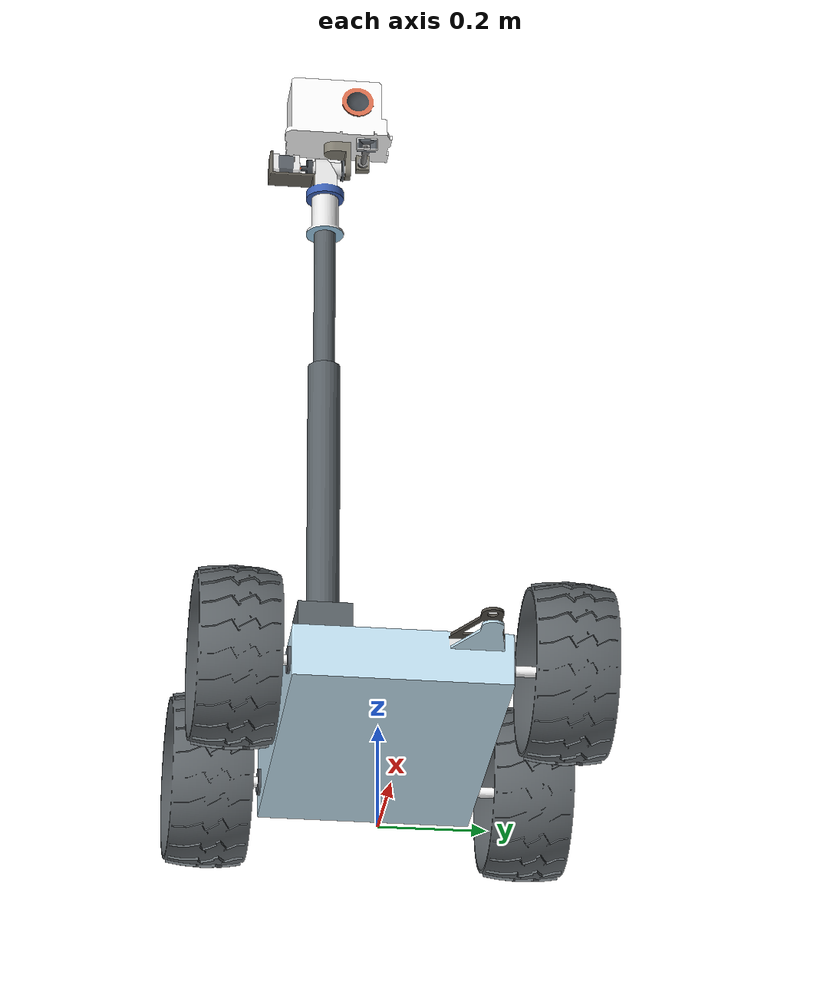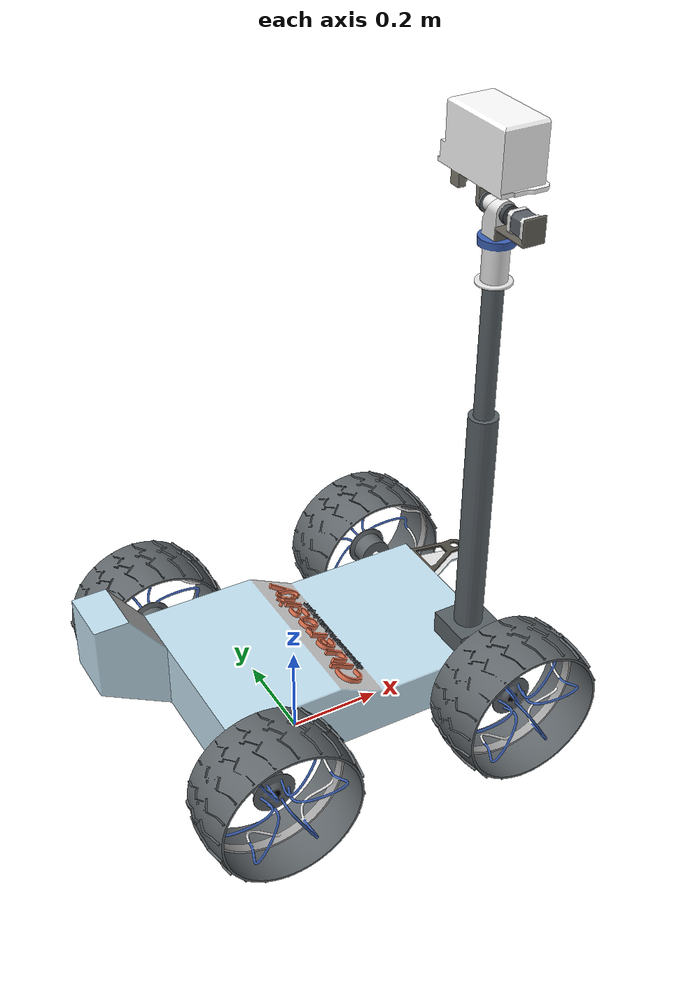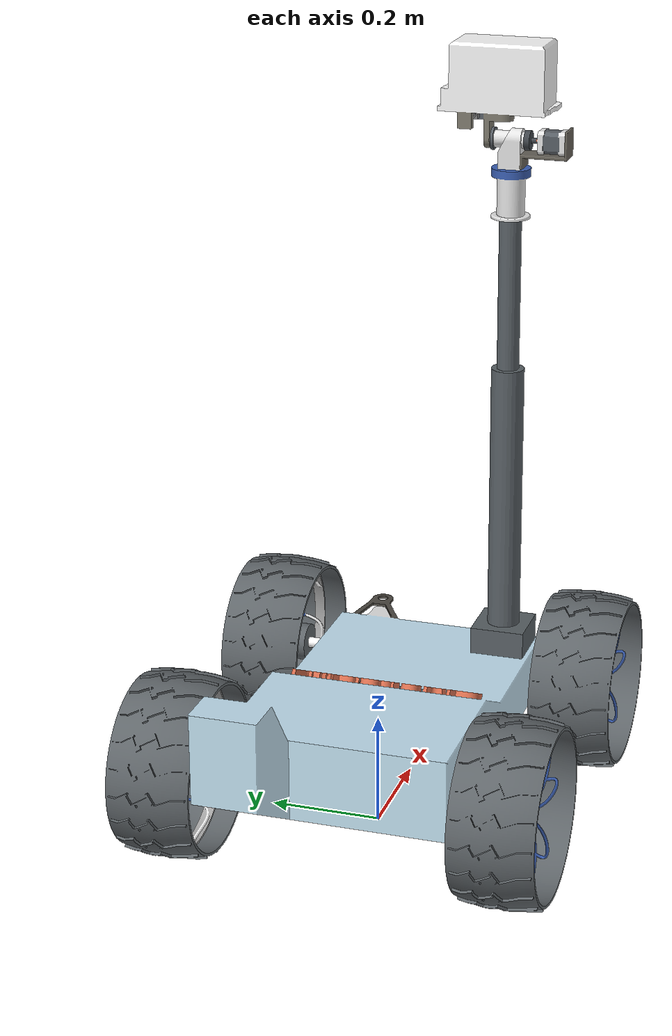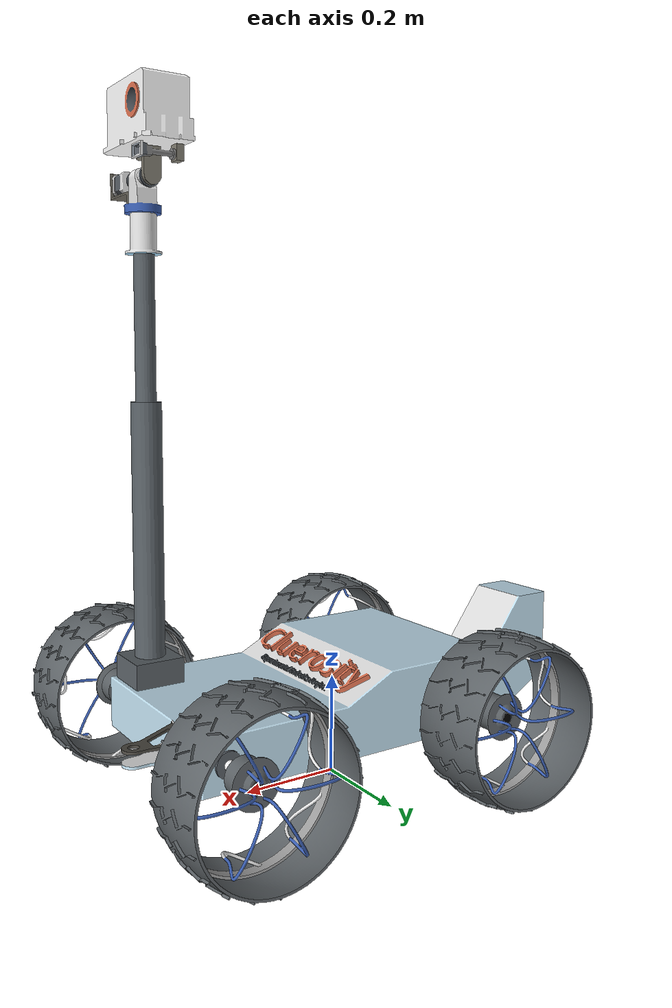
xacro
<?xml version="1.0"?>
<robot name="cluerosity" xmlns:xacro="http://www.ros.org/wiki/xacro">

    <!-- Includes -->
    <xacro:include filename="$(find cluerosity_description)/urdf/meshes.xacro" />
    <xacro:include filename="$(find cluerosity_description)/urdf/materials.xacro" />
    <xacro:include filename="$(find cluerosity_description)/urdf/visual.xacro" />
    <xacro:include filename="$(find cluerosity_description)/urdf/physics.xacro" />
    <xacro:include filename="$(find cluerosity_description)/urdf/wheels.xacro" />
    <xacro:include filename="$(find cluerosity_description)/urdf/cluerosity_links.xacro" />
    <xacro:include filename="$(find cluerosity_description)/urdf/cluerosity.gazebo" />
    <xacro:include filename="$(find cluerosity_description)/urdf/gimbal_transmission.xacro" />

    <!-- Properties -->
    <xacro:property name="PI" value="3.14159265359" />

    <!--
        +=====================+
        |      Base Link      |
        +=====================+
    -->
    <xacro:base_link mesh_name="${robot_base}"/>

    <!--
        +=====================+
        |     Wheel Shaft     |
        +=====================+
    -->
    <xacro:cluerosity_shaft
        name="front_shaft"
        joint_xyz="0.350 0 0.05" />

    <xacro:cluerosity_shaft
        name="rear_shaft"
        joint_xyz="-0.20 0 0.05" />

    <!--
        +=====================+
        |   Wheel definition  |
        +=====================+
    -->

    <!-- Right Front Wheel -->
    <xacro:cluerosity_wheel
        name="right_front_wheel"
        tyre_xyz="-0.14686986 0 0" tyre_rpy="${PI/2} 0 ${-PI/2}"
        rim_xyz="0 0 0" rim_rpy="0 0 0"
        joint_xyz="0.35 -0.30 0.05" joint_rpy="0 0 0" />

    <!-- Right Rear Wheel -->
    <xacro:cluerosity_wheel
        name="right_rear_wheel"
        tyre_xyz="-0.14686986 0 0" tyre_rpy="${PI/2} 0 ${-PI/2}"
        rim_xyz="0 0 0" rim_rpy="0 0 0"
        joint_xyz="-0.20 -0.30 0.05" joint_rpy="0 0 0" />

    <!-- Left Front Wheel -->
    <xacro:cluerosity_wheel
        name="left_front_wheel"
        tyre_xyz="-0.14686986 0 0" tyre_rpy="${PI/2} 0 ${-PI/2}"
        rim_xyz="0 0 0" rim_rpy="0 0 ${PI}"
        joint_xyz="0.35 0.30 0.05" joint_rpy="0 0 0" />

    <!-- Left Rear Wheel -->
    <xacro:cluerosity_wheel
        name="left_rear_wheel"
        tyre_xyz="-0.14686986 0 0" tyre_rpy="${PI/2} 0 ${-PI/2}"
        rim_xyz="0 0 0" rim_rpy="0 0 ${PI}"
        joint_xyz="-0.20 0.30 0.05" joint_rpy="0 0 0" />

    <!--
        +=====================+
        |   Sensor Gimbal     |
        +=====================+
    -->

    <!-- Gimbal Base  -->
    <xacro:gimbal_base />

    <xacro:gimbal_base_b />

    <xacro:gimbal_base_c />

    <!-- Gimbal Axle  -->
    <xacro:gimbal_axle mesh_name="${gimbal_axle}"/>

    <!-- Gimbal Sensor Housing  -->
    <xacro:sensor_housing mesh_name="${sensor_housing}" />

     <!-- Testing the Sensor height adjuster -->

    <!-- Stepper Motor -->
    <xacro:fixed_link
        name="stepper_motor"
        link_xyz="0 0 0" link_rpy="0 ${PI/2} 0"
        mesh_name="${stepper_motor}"
        joint_xyz="-0.10 0 0.19" joint_rpy="0 0 0"
        parent="gimbal_axle"
        collision_xyz="0.0325 0 0" collision_rpy="0 ${PI/2} 0" collision_size="0.05 0.05 0.080"
        mass="0.20879833"
        ixx="0.0000978" ixy="0" ixz="0"
        iyy="0.0000978" iyz="0" izz="0.0000491"/>

    <!-- Camera Sensor -->
    <xacro:sensor_link
        name="camera_link"
        joint_xyz="0.035 -0.05 0.125" joint_rpy="0 0 ${-PI/2}"
        parent="sensor_housing" />

     <xacro:sensor_link
        name="rear_camera_link"
        joint_xyz="-0.325 0.140 0.25" joint_rpy="0 0 ${PI-0.5}"
        parent="base_link" />

    <!-- RGB-D Camera  -->
    <xacro:sensor_link
        name="camera_depth_link"
        joint_xyz="0.05 0 0" joint_rpy="${-PI/2} 0 ${-PI/2}"
        parent="camera_link"/>

    <!-- Hokuyo Laser Scanner -->
    <xacro:sensor_link
        name="hokuyo_link"
        joint_xyz="0.05 -0.05 0.035" joint_rpy="0 0 ${-PI/2}"
        parent="sensor_housing" />

    <!--
        +=======================+
        | Velodyne LiDAR Sensor |
        +=======================+
    -->

    <!-- LiDAR Base -->
    <!-- LiDAR Sensor -->
</robot>

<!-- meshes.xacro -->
<robot xmlns:xacro="http://www.ros.org/wiki/xacro">
    <xacro:property name="robot_base" value="package://cluerosity_description/meshes/robot_base.dae" />
    <xacro:property name="tyre" value="package://cluerosity_description/meshes/tyre.dae" />
    <xacro:property name="rim" value="package://cluerosity_description/meshes/rim.dae" />
    <xacro:property name="gimbal_axle" value="package://cluerosity_description/meshes/gimbal_axle.dae" />
    <xacro:property name="stepper_motor" value="package://cluerosity_description/meshes/stepper_motor.dae" />
    <xacro:property name="sensor_housing" value="package://cluerosity_description/meshes/sensor_housing.dae" />
    <xacro:property name="lidar_base" value="package://cluerosity_description/meshes/lidar_base.dae" />
    <xacro:property name="lidar_sensor" value="package://cluerosity_description/meshes/velodyne_lidar.dae" />
    <xacro:property name="motor" value="package://cluerosity_description/meshes/motor.dae" />
    <xacro:property name="motor_connector_01" value="package://cluerosity_description/meshes/motor_connector_01.dae" />
    <xacro:property name="motor_connector_02" value="package://cluerosity_description/meshes/motor_connector_02.dae" />
    <xacro:property name="link_01" value="package://cluerosity_description/meshes/link_01.dae" />
    <xacro:property name="link_02" value="package://cluerosity_description/meshes/link_02.dae" />
    <xacro:property name="end_effector_connector" value="package://cluerosity_description/meshes/end_effector_connector.dae" />

</robot>

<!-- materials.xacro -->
<robot name="m2wr" xmlns:xacro="https://www.ros.org/wiki/xacro">

    <material name="black">
        <color rgba="0.0 0.0 0.0 1.0" />
    </material>
    <material name="blue">
        <color rgba="0.203125 0.23828125 0.28515625 1.0" />
    </material>
    <material name="green">
        <color rgba="0.0 0.8 0.0 1.0" />
    </material>
    <material name="grey">
        <color rgba="0.2 0.2 0.2 1.0" />
    </material>
    <material name="orange">
        <color rgba="1.0 0.423529411765 0.0392156862745 1.0" />
    </material>
    <material name="brown">
        <color rgba="0.870588235294 0.811764705882 0.764705882353 1.0" />
    </material>
    <material name="red">
        <color rgba="0.80078125 0.12890625 0.1328125 1.0" />
    </material>
    <material name="white">
        <color rgba="1.0 1.0 1.0 1.0" />
    </material>
    <material name="dark_gray">
        <color rgba="0.35 0.38 0.4 1" />
    </material>
    <material name="cyan">
        <color rgba="0 1.0 1.0 1.0" />
    </material>

</robot>

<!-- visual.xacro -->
<robot xmlns:xacro="http://ros.org/wiki/xacro">

    <!-- For Links with Meshes -->
    <xacro:macro name="mesh_link" params="xyz rpy mesh_name">
        <visual>
            <origin xyz="${xyz}" rpy="${rpy}" />
            <geometry>
                <mesh filename="${mesh_name}" />
            </geometry>
        </visual>
    </xacro:macro>

    <!-- For Cylindrical Links  -->
    <xacro:macro name="cylinder_link" params="xyz rpy length radius material_name">
        <visual>
            <origin xyz="${xyz}" rpy="${rpy}" />
            <geometry>
                <cylinder length="${length}" radius="${radius}" />
            </geometry>
            <material name="${material_name}" />
        </visual>
    </xacro:macro>

    <!-- For box links -->
    <xacro:macro name="box_link" params="xyz rpy box_size material_name">
        <visual>
            <origin xyz="${xyz}" rpy="${rpy}" />
            <geometry>
                <box size="${box_size}" />
            </geometry>
            <material name="${material_name}" />
        </visual>
    </xacro:macro>

</robot>

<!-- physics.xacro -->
<robot xmlns:xacro="http://ros.org/wiki/xacro">

    <!-- Box Collsion -->
    <xacro:macro name="box_collision" params="xyz rpy box_size">
        <collision>
            <origin xyz="${xyz}" rpy="${rpy}" />
            <geometry>
                <box size="${box_size}" />
            </geometry>
        </collision>
    </xacro:macro>

    <!-- Cylindrical Collision  -->
    <xacro:macro name="cylinder_collision" params="xyz rpy length radius">
        <collision>
            <origin xyz="${xyz}" rpy="${rpy}" />
            <geometry>
                <cylinder length="${length}" radius="${radius}" />
            </geometry>
        </collision>
    </xacro:macro>

    <!-- Mass Properties: Inertial definition -->
    <xacro:macro name="link_inertia" params="xyz rpy mass ixx ixy ixz iyy iyz izz">
        <inertial>
            <mass value="${mass}" />
            <origin xyz="${xyz}" rpy="${rpy}" />
            <inertia ixx="${ixx}" ixy="${ixy}" ixz="${ixz}" iyy="${iyy}" iyz="${iyz}" izz="${izz}" />
        </inertial>
    </xacro:macro>

</robot>

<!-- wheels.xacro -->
<robot xmlns:xacro="http://ros.org/wiki/xacro">

    <!--
        +==================================+
        |      Wheel Definition Macro      |
        +=================================+
    -->

    <xacro:macro name="cluerosity_wheel" params="name tyre_xyz tyre_rpy rim_xyz rim_rpy joint_xyz joint_rpy">
        <link name="${name}">
            <xacro:mesh_link
                xyz="${tyre_xyz}" rpy="${tyre_rpy}"
                mesh_name="${tyre}"/>
            <xacro:mesh_link
                xyz="${rim_xyz}" rpy="${rim_rpy}"
                mesh_name="${rim}"/>
            <xacro:cylinder_collision
                xyz="0 0 0" rpy="${PI/2} 0 0"
                length="0.15" radius="0.165" />
            <xacro:link_inertia
                xyz="0 0 0" rpy="${PI/2} 0 0"
                mass="5.52250093"
                ixx="0.13326254" ixy="0" ixz="0"
                iyy="0.07660474" iyz="0"  izz="0.077"/>
        </link>

        <joint name="${name}_joint" type="continuous">
            <parent link="base_link" />
            <child link="${name}" />
            <origin xyz="${joint_xyz}" rpy="${joint_rpy}" />
            <axis xyz="0 1 0" rpy="0 0 0" />
        </joint>
    </xacro:macro>

    <!--
        +=============================+
        |      Wheel Shaft Macro      |
        +============================+
    -->

    <xacro:macro name="cluerosity_shaft" params="name joint_xyz">
        <link name="${name}">
            <xacro:cylinder_link
                xyz="0 0 0" rpy="${PI/2} 0 0"
                radius="0.010" length="0.550"
                material_name="white"/>
            <xacro:cylinder_collision
                xyz="0 0 0" rpy="${PI/2} 0 0"
                radius="0.010" length="0.550"/>
            <xacro:link_inertia
                xyz="0 0 0" rpy="${PI/2} 0 0"
                mass="0.30129837"
                ixx="0.00759711" ixy="0" ixz="0"
                iyy="0.00759711" iyz="0"  izz="0.00000377"/>
        </link>

        <joint name="${name}_joint" type="fixed">
            <parent link="base_link" />
            <child link="${name}" />
            <origin xyz="${joint_xyz}" rpy="0 0 0" />
        </joint>
    </xacro:macro>

</robot>

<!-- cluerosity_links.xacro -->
<robot xmlns:xacro="http://ros.org/wiki/xacro">

    <!--
        +===========================+
        |      Fixed Link Macro     |
        +==========================+
    -->

    <xacro:macro name="fixed_link"
        params="name link_xyz link_rpy joint_xyz joint_rpy mesh_name collision_xyz collision_rpy collision_size mass ixx ixy ixz iyy iyz izz parent">
        <link name="${name}">
            <xacro:mesh_link
                xyz="${link_xyz}" rpy="${link_rpy}"
                mesh_name="${mesh_name}" />
            <xacro:box_collision
                xyz="${collision_xyz}" rpy="${collision_rpy}"
                box_size="${collision_size}" />
            <xacro:link_inertia
                xyz="${collision_xyz}" rpy="${collision_rpy}"
                mass="${mass}"
                ixx="${ixx}" ixy="${ixy}" ixz="${ixz}"
                iyy="${iyy}" iyz="${iyz}" izz="${izz}" />
        </link>

        <joint name="${name}_joint" type="fixed">
            <parent link="${parent}" />
            <child link="${name}" />
            <origin xyz="${joint_xyz}" rpy="${joint_rpy}" />
        </joint>
    </xacro:macro>

    <!--
        +===========================+
        |   Continuous Link Macro    |
        +==========================+
    -->

    <xacro:macro name="continuous_link"
        params="name link_xyz link_rpy joint_xyz joint_rpy mesh_name collision_xyz collision_rpy collision_size mass ixx ixy ixz iyy iyz izz parent axis_xyz axis_rpy">
        <link name="${name}">
            <xacro:mesh_link
                xyz="${link_xyz}" rpy="${link_rpy}"
                mesh_name="${mesh_name}" />
            <xacro:box_collision
                xyz="${collision_xyz}" rpy="${collision_rpy}"
                box_size="${collision_size}" />
            <xacro:link_inertia
                xyz="${collision_xyz}" rpy="${collision_rpy}"
                mass="${mass}"
                ixx="${ixx}" ixy="${ixy}" ixz="${ixz}"
                iyy="${iyy}" iyz="${iyz}" izz="${izz}" />
        </link>

        <joint name="${name}_joint" type="continuous">
            <parent link="${parent}" />
            <child link="${name}" />
            <origin xyz="${joint_xyz}" rpy="${joint_rpy}" />
            <axis xyz="${axis_xyz}" rpy="${axis_rpy}" />
        </joint>
    </xacro:macro>

    <!--
        +===========================+
        |  Revolute Link Macro    |
        +==========================+
    -->

    <xacro:macro name="revolute_link"
        params="name link_xyz link_rpy joint_xyz joint_rpy mesh_name collision_xyz collision_rpy collision_size mass ixx ixy ixz iyy iyz izz parent axis_xyz axis_rpy lower upper">
        <link name="${name}">
            <xacro:mesh_link
                xyz="${link_xyz}" rpy="${link_rpy}"
                mesh_name="${mesh_name}" />
            <xacro:box_collision
                xyz="${collision_xyz}" rpy="${collision_rpy}"
                box_size="${collision_size}" />
            <xacro:link_inertia
                xyz="${collision_xyz}" rpy="${collision_rpy}"
                mass="${mass}"
                ixx="${ixx}" ixy="${ixy}" ixz="${ixz}"
                iyy="${iyy}" iyz="${iyz}" izz="${izz}" />
        </link>

        <joint name="${name}_joint" type="revolute">
            <parent link="${parent}" />
            <child link="${name}" />
            <origin xyz="${joint_xyz}" rpy="${joint_rpy}" />
            <axis xyz="${axis_xyz}" rpy="${axis_rpy}" />
            <limit effort="1000.0" lower="${lower}" upper="${upper}" velocity="0.5" />
        </joint>
    </xacro:macro>

    <!--
        +===========================+
        |  Prismatic Link Macro    |
        +==========================+
    -->

    <xacro:macro name="prismatic_link"
        params="name link_xyz link_rpy joint_xyz joint_rpy length radius mass ixx ixy ixz iyy iyz izz parent lower upper">
        <link name="${name}">
            <xacro:cylinder_link
                xyz="${link_xyz}" rpy="${link_rpy}"
                length="${length}"
                radius="${radius}"
                material_name="dark_gray" />

            <xacro:cylinder_collision
                xyz="${link_xyz}" rpy="${link_rpy}"
                length="${length}"
                radius="${radius}" />
            <xacro:link_inertia
                xyz="${link_xyz}" rpy="${link_rpy}"
                mass="${mass}"
                ixx="${ixx}" ixy="${ixy}" ixz="${ixz}"
                iyy="${iyy}" iyz="${iyz}" izz="${izz}" />
        </link>

        <joint name="${name}_joint" type="prismatic">
            <parent link="${parent}" />
            <child link="${name}" />
            <origin xyz="${joint_xyz}"
                rpy="${joint_rpy}" />
            <limit
                effort="1000.0" lower="${lower}" upper="${upper}" velocity="0.5" />
        </joint>
    </xacro:macro>

    <!--
        +==============================================+
        |      Base Link and Base footprint Macro      |
        +==============================================+
    -->

    <xacro:macro name="base_link" params="mesh_name">
        <link name="base_link">
            <xacro:mesh_link
                xyz="0 0 0.15" rpy="0 ${PI} ${-PI/2}"
                mesh_name="${mesh_name}" />
            <xacro:box_collision
                xyz="0 0 0.075" rpy="0 0 0"
                box_size="0.8 0.4 0.15" />
            <xacro:box_collision
                xyz="-0.325 0.14 0.2" rpy="0 0 0"
                box_size="0.15 0.12 0.1" />
            <xacro:box_collision
                xyz="0.45 0.1 0.05" rpy="0 0 0"
                box_size="0.1 0.1 0.05" />
            <xacro:link_inertia
                xyz="0 0 0.075" rpy="0 0 0"
                mass="56.77662104"
                ixx="2.64" ixy="0.221" ixz="0.046"
                iyy="0.907" iyz="-0.237" izz="3.303" />
        </link>

        <!-- Base footprint is on the ground under the robot -->
        <link name="base_footprint" />

        <joint name="base_link_joint" type="fixed">
            <origin xyz="0 0 0.115" rpy="0 0 0" />
            <parent link="base_footprint" />
            <child link="base_link" />
        </joint>
    </xacro:macro>

    <!--
        +==================================+
        |   Sensor Gimbal links Macro     |
        +================================+
    -->

    <!-- Gimbal Base  -->
    <xacro:macro name="gimbal_base">
        <link name="gimbal_base">
            <xacro:box_link
                xyz="0 0 0.025" rpy="0 0 0"
                box_size="0.1 0.1 0.05"
                material_name="dark_gray" />
            <xacro:box_collision
                xyz="0 0 0.025" rpy="0 0 0"
                box_size="0.1 0.1 0.05" />
            <xacro:link_inertia
                xyz="0 0 0.025" rpy="0 0 0"
                mass="3.4875"
                ixx="0.004" ixy="0" ixz="0"
                iyy="0.004" iyz="0" izz="0.006" />
        </link>

        <joint name="gimbal_base_joint" type="fixed">
            <parent link="base_link" />
            <child link="gimbal_base" />
            <origin xyz="0.340 -0.140 0.1" rpy="0 0 ${PI/2}" />
        </joint>
    </xacro:macro>

    <xacro:macro name="gimbal_base_b">
        <link name="gimbal_base_b">
            <xacro:cylinder_link
                xyz="-0.1 0 0" rpy="0 ${PI/2} 0"
                length="0.5" radius="0.03"
                material_name="dark_gray" />
            <xacro:link_inertia
                xyz="0 0 0.025" rpy="0 0 0"
                mass="3.5"
                ixx="0.004" ixy="0" ixz="0"
                iyy="0.004" iyz="0" izz="0.006" />
        </link>

        <joint name="gimbal_base_b_joint" type="fixed">
            <parent link="gimbal_base" />
            <child link="gimbal_base_b" />
            <origin xyz="0 0 0.2" rpy="0 ${PI/2} 0" />
        </joint>
    </xacro:macro>

    <xacro:macro name="gimbal_base_c">
        <link name="gimbal_base_c">
            <xacro:cylinder_link
                xyz="0 0 0" rpy="0 ${PI/2} 0"
                length="0.8" radius="0.02"
                material_name="dark_gray" />
            <xacro:link_inertia
                xyz="0 0 0" rpy="0 ${PI/2} 0"
                mass="2.5"
                ixx="0.004" ixy="0" ixz="0"
                iyy="0.004" iyz="0" izz="0.006" />
        </link>

        <joint name="gimbal_base_c_joint" type="fixed">
            <parent link="gimbal_base_b" />
            <child link="gimbal_base_c" />
            <origin xyz="-0.28 0 0" rpy="0 0 0" />
        </joint>
    </xacro:macro>

    <!-- Gimbal Axle -->
    <xacro:macro name="gimbal_axle" params="mesh_name">
        <link name="gimbal_axle">
            <xacro:mesh_link
                xyz="0 0 0" rpy="0 0 0"
                mesh_name="${mesh_name}" />
            <xacro:box_collision
                xyz="0 0 0.12" rpy="0 0 0"
                box_size="0.07 0.07 0.190" />
            <xacro:link_inertia
                xyz="0 0 0.12" rpy="0 0 0"
                mass="0.86030554"
                ixx="0.00159531" ixy="0" ixz="0"
                iyy="0.00204855" iyz="0" izz="0.00078318" />
        </link>

        <joint name="gimbal_axle_joint" type="continuous">  <!-- change back to "continuous" -->
            <parent link="gimbal_base_c" />
            <child link="gimbal_axle" />
            <origin xyz="-0.3 0 0" rpy="0 -${PI/2} 0" />
            <axis xyz="0 0 1" rpy="0 0 0" />
        </joint>
    </xacro:macro>

    <!-- Sensor Housing -->
    <xacro:macro name="sensor_housing" params="mesh_name">
        <link name="sensor_housing">
            <xacro:mesh_link
                xyz="0 0 0.053" rpy="0 0 0"
                mesh_name="${mesh_name}" />
            <xacro:box_collision
                xyz="0 0 0.105" rpy="0 0 0"
                box_size="0.200 0.100 0.150" />
            <xacro:link_inertia
                xyz="0 0 0.105" rpy="0 0 0"
                mass="2.14582602"
                ixx="0.00498945" ixy="-0.00002479" ixz="0.0002252"
                iyy="0.00883757" iyz="-0.00005538" izz="0.00675851" />
        </link>

        <joint name="sensor_housing_joint" type="revolute"> <!-- change back to "revolute" -->
            <parent link="stepper_motor" />
            <child link="sensor_housing" />
            <origin xyz="0.122 0 0" rpy="0 0 0" />
            <axis xyz="1 0 0" rpy="0 0 0" />
            <limit effort="1000.0" lower="-0.7" upper="1.0" velocity="0.5" />
        </joint>
    </xacro:macro>

    <!-- Sensor Link -->
    <xacro:macro name="sensor_link" params="name joint_xyz joint_rpy parent">
        <link name="${name}">
        </link>

        <joint name="${name}_joint" type="fixed">
            <parent link="${parent}" />
            <child link="${name}" />
            <origin xyz="${joint_xyz}" rpy="${joint_rpy}" />
        </joint>
    </xacro:macro>

    <xacro:macro name="motor_link"
        params="name joint_xyz joint_rpy parent axis_xyz axis_rpy lower upper">
        <link name="${name}">
            <xacro:mesh_link
                xyz="0 0 0" rpy="0 0 0"
                mesh_name="${motor}" />
            <xacro:box_collision
                xyz="0 0 0" rpy="0 0 0"
                box_size="0.065 0.065 0.1" />
            <xacro:link_inertia
                xyz="0 0 0" rpy="0 0 0"
                mass="0.33104028"
                ixx="0.00022976" ixy="0" ixz="0"
                iyy="0.00022976" iyz="0" izz="0.00011672" />
        </link>

        <joint name="${name}_joint" type="revolute">
            <parent link="${parent}" />
            <child link="${name}" />
            <origin xyz="${joint_xyz}"
                rpy="${joint_rpy}" />
            <axis xyz="${axis_xyz}" rpy="${axis_rpy}" />
            <limit
                effort="1000.0" lower="${lower}" upper="${upper}" velocity="0.5" /> --> </joint>
    </xacro:macro>

</robot>
